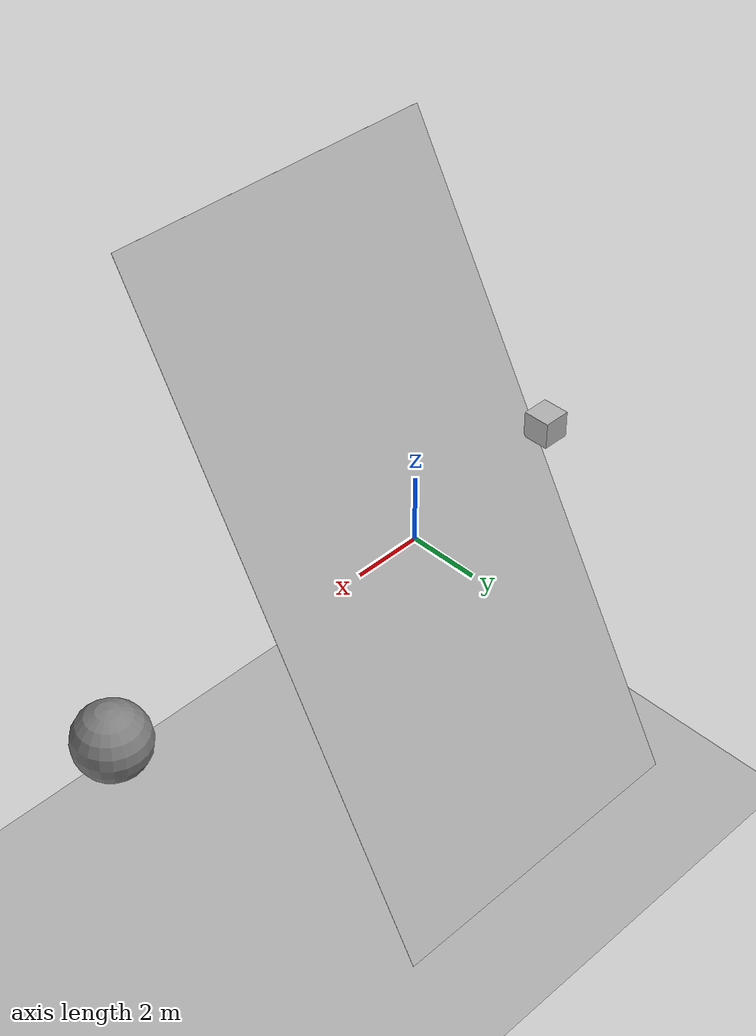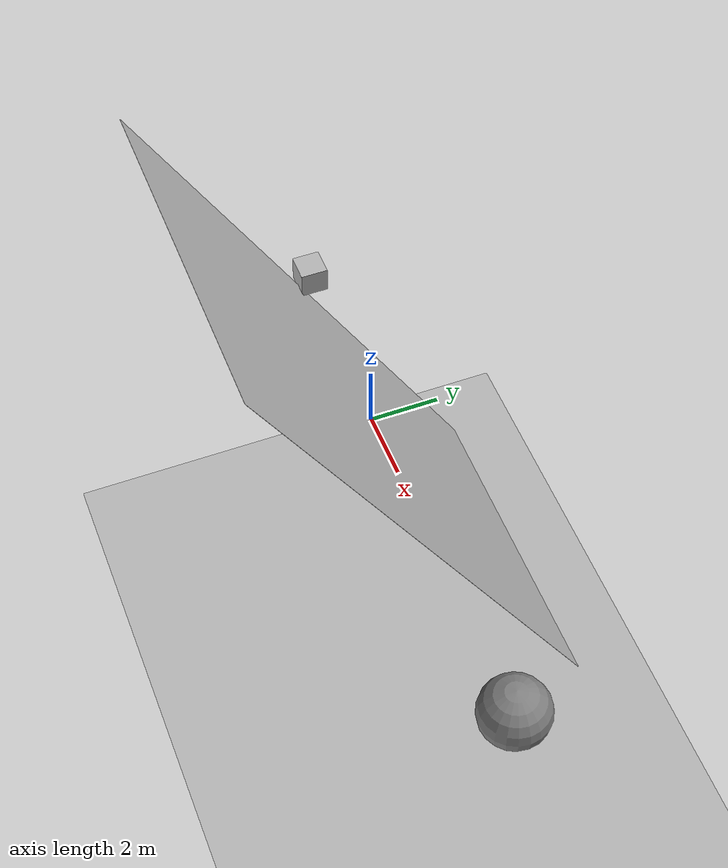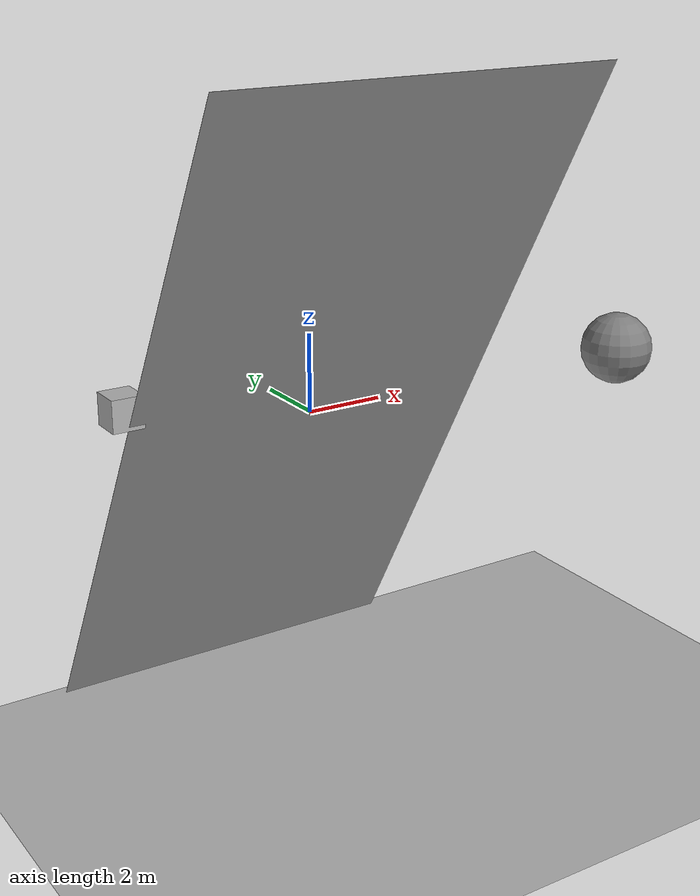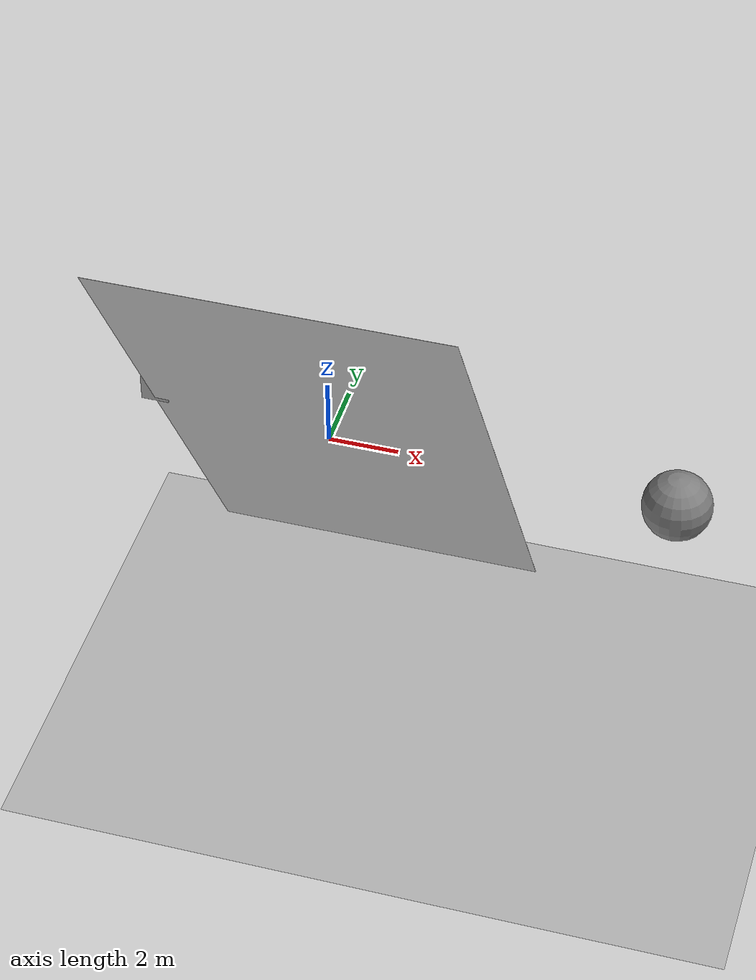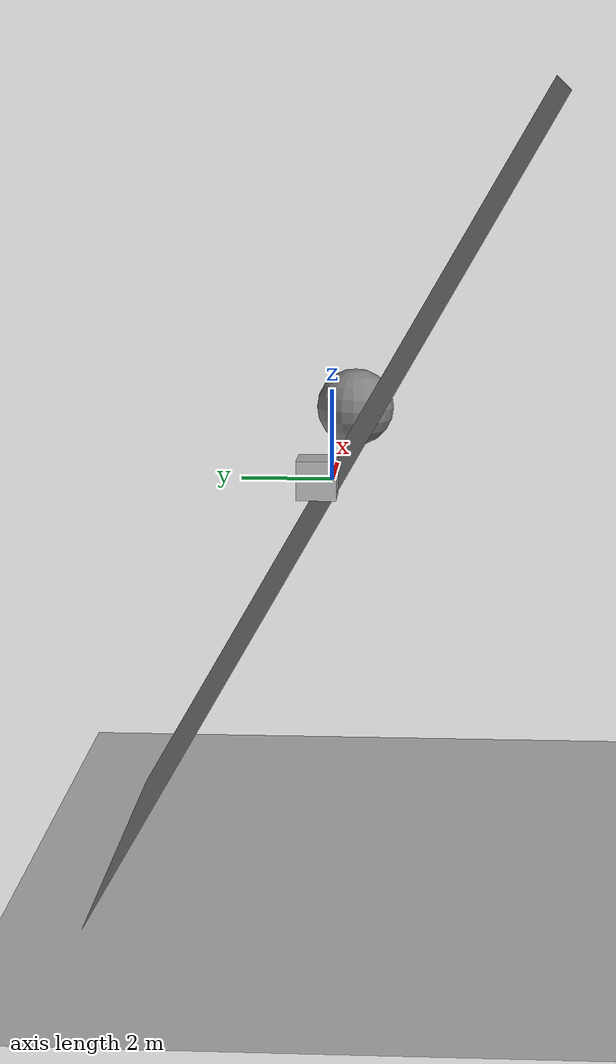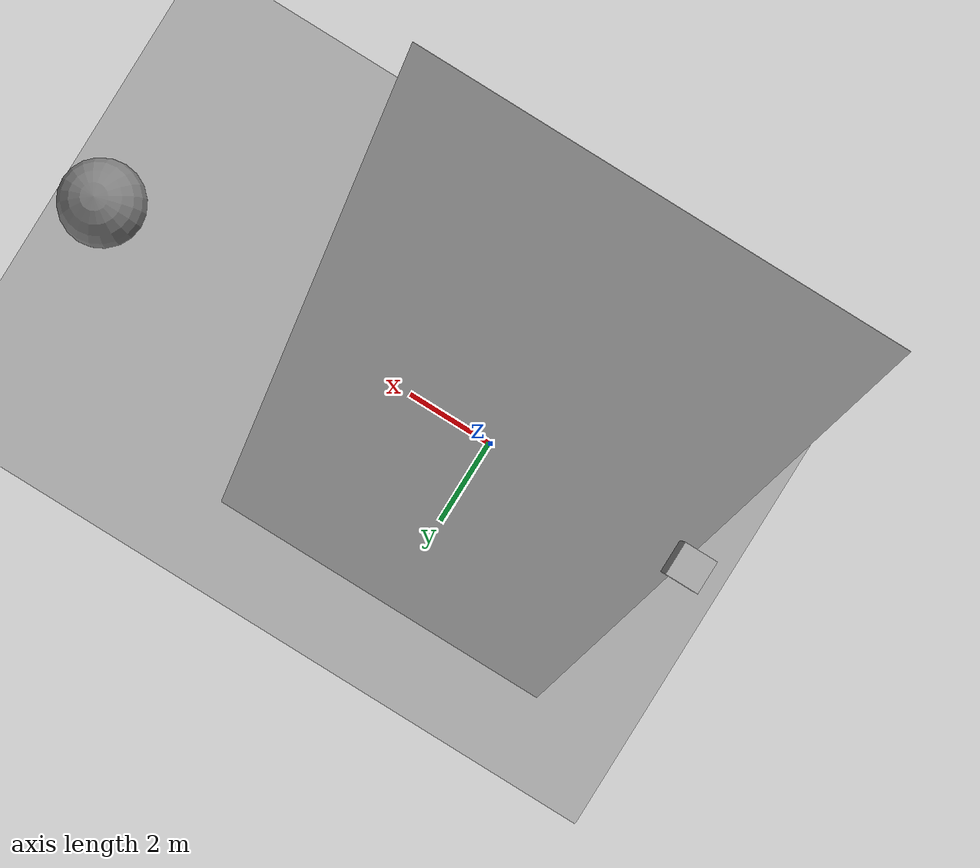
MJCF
<mujoco>
  <option gravity="0 0 -9.81" />
  <worldbody>
    <body name="object_2" pos="0 0 0">
      <geom type="plane" size="5 10 0.1" rgba="0.7 0.7 0.7 1" friction="0.4 0.4 0.4" quat="0.5 0.86 0 0" />
    </body>
    <body name="object_3" pos="-10 0 -10">
      <geom type="plane" size="25 25 0.1" rgba="0.7 0.7 0.7 1" friction="1 1 1" />
    </body>
    <body name="object_1" pos="-5 0 1">
      <geom type="box" size="0.4 0.4 0.4" density="1" rgba="0.7 0.7 0.7 1" />
      <joint name="object_1_joint" type="free" />
    </body>
  <body name="test_plane" pos="10 0 0"><geom type="sphere" size="1.0" rgba="0.5 0.5 0.5 1" /></body></worldbody>
</mujoco>
